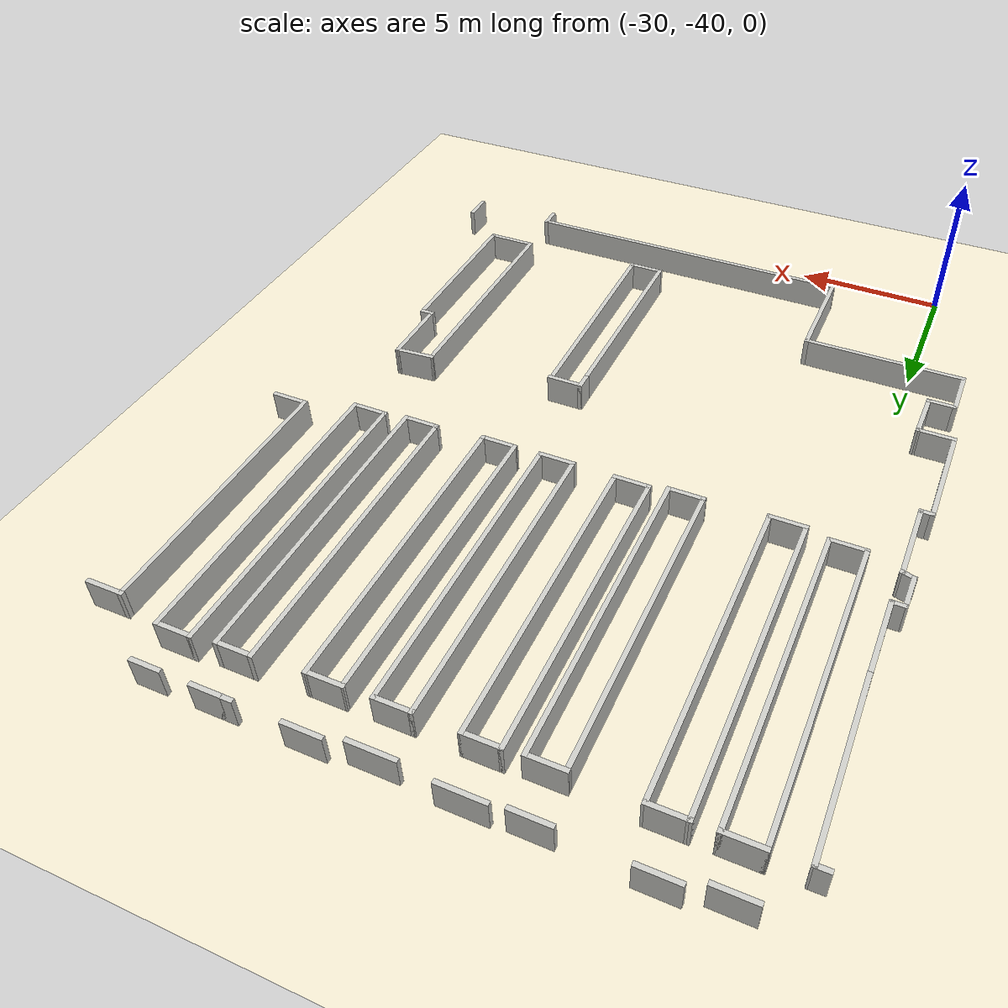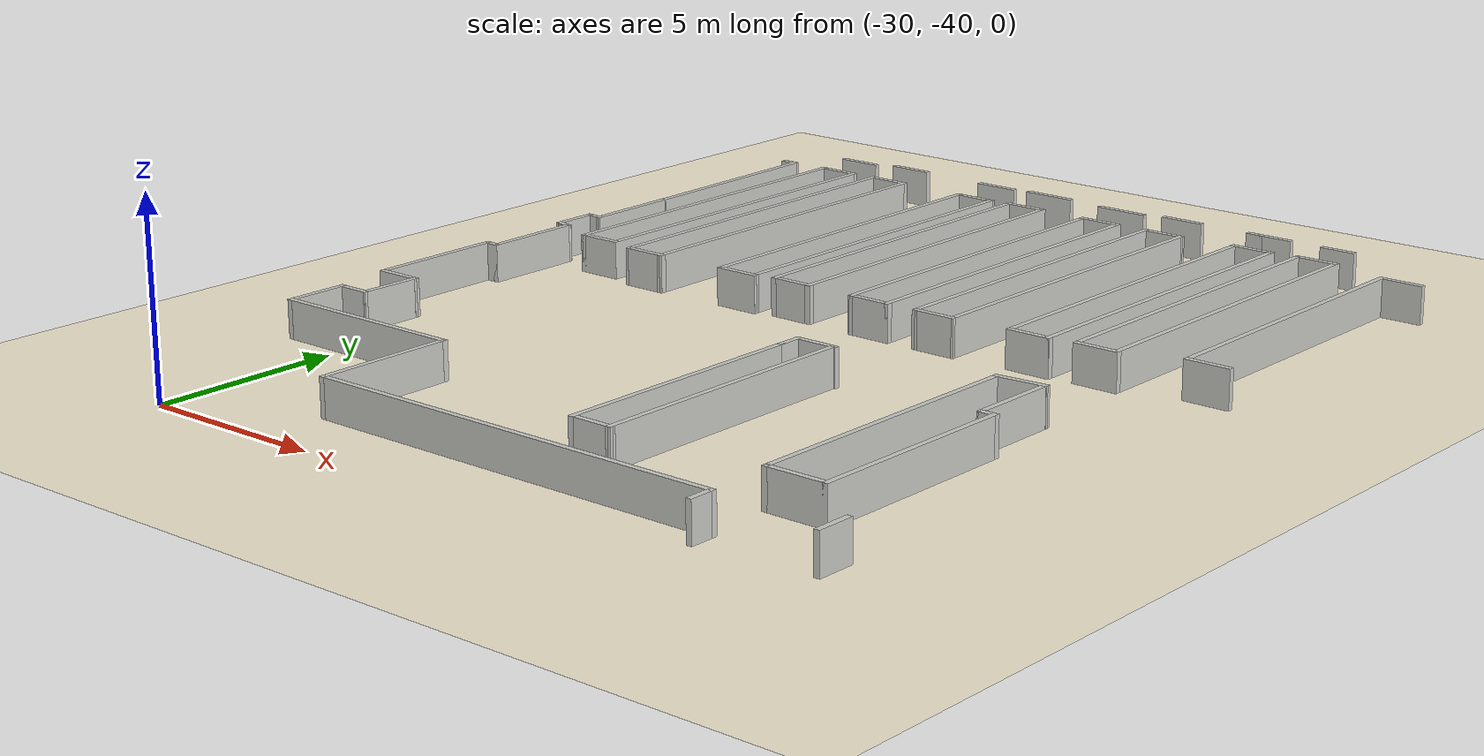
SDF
<sdf version="1.7">
 <world name="default">
  <model name="ground_plane">
   <static>1</static>
   <link name="link">
    <collision name="collision">
     <geometry><plane><normal>0 0 1</normal><size>100 100</size></plane></geometry>
     <surface><friction><ode><mu>100</mu><mu2>50</mu2></ode></friction></surface>
    </collision>
    <visual name="visual">
     <cast_shadows>0</cast_shadows>
     <geometry><plane><normal>0 0 1</normal><size>100 100</size></plane></geometry>
     <material>
      <ambient>0.85 0.82 0.72 1</ambient>
      <diffuse>0.95 0.92 0.82 1</diffuse>
      <specular>0.05 0.05 0.05 1</specular>
     </material>
    </visual>
   </link>
  </model>
  <model name="warehouse">
   <pose>0.004046 2.00696 0 0 -0 0</pose>
   <link name="Wall_100">
    <collision name="Wall_100_Collision">
     <geometry><box><size>1.75 0.15 1</size></box></geometry>
     <pose>0 0 0.5 0 -0 0</pose>
    </collision>
    <visual name="Wall_100_Visual">
     <pose>0 0 0.5 0 -0 0</pose>
     <geometry><box><size>1.75 0.15 1</size></box></geometry>
     <material>
      <script><uri>file://media/materials/scripts/gazebo.material</uri><name>Gazebo/CeilingTiled</name></script>
      <ambient>1 1 1 1</ambient>
     </material>
     <meta><layer>0</layer></meta>
    </visual>
    <pose>-30.8775 -34.2135 0 0 -0 1.54893</pose>
   </link>
   <link name="Wall_101">
    <collision name="Wall_101_Collision">
     <geometry><box><size>1.28487 0.15 1</size></box></geometry>
     <pose>0 0 0.5 0 -0 0</pose>
    </collision>
    <visual name="Wall_101_Visual">
     <pose>0 0 0.5 0 -0 0</pose>
     <geometry><box><size>1.28487 0.15 1</size></box></geometry>
     <material>
      <script><uri>file://media/materials/scripts/gazebo.material</uri><name>Gazebo/CeilingTiled</name></script>
      <ambient>1 1 1 1</ambient>
     </material>
     <meta><layer>0</layer></meta>
    </visual>
    <pose>-31.4275 -33.4135 0 0 -0 3.14159</pose>
   </link>
   <link name="Wall_102">
    <collision name="Wall_102_Collision">
     <geometry><box><size>3.75 0.15 1</size></box></geometry>
     <pose>0 0 0.5 0 -0 0</pose>
    </collision>
    <visual name="Wall_102_Visual">
     <pose>0 0 0.5 0 -0 0</pose>
     <geometry><box><size>3.75 0.15 1</size></box></geometry>
     <material>
      <script><uri>file://media/materials/scripts/gazebo.material</uri><name>Gazebo/CeilingTiled</name></script>
      <ambient>1 1 1 1</ambient>
     </material>
     <meta><layer>0</layer></meta>
    </visual>
    <pose>-31.995 -31.6135 0 0 -0 1.5708</pose>
   </link>
   <link name="Wall_103">
    <collision name="Wall_103_Collision">
     <geometry><box><size>0.5 0.15 1</size></box></geometry>
     <pose>0 0 0.5 0 -0 0</pose>
    </collision>
    <visual name="Wall_103_Visual">
     <pose>0 0 0.5 0 -0 0</pose>
     <geometry><box><size>0.5 0.15 1</size></box></geometry>
     <material>
      <script><uri>file://media/materials/scripts/gazebo.material</uri><name>Gazebo/CeilingTiled</name></script>
      <ambient>1 1 1 1</ambient>
     </material>
     <meta><layer>0</layer></meta>
    </visual>
    <pose>-31.82 -29.8135 0 0 -0 0</pose>
   </link>
   <link name="Wall_104">
    <collision name="Wall_104_Collision">
     <geometry><box><size>2.75 0.15 1</size></box></geometry>
     <pose>0 0 0.5 0 -0 0</pose>
    </collision>
    <visual name="Wall_104_Visual">
     <pose>0 0 0.5 0 -0 0</pose>
     <geometry><box><size>2.75 0.15 1</size></box></geometry>
     <material>
      <script><uri>file://media/materials/scripts/gazebo.material</uri><name>Gazebo/CeilingTiled</name></script>
      <ambient>1 1 1 1</ambient>
     </material>
     <meta><layer>0</layer></meta>
    </visual>
    <pose>-31.645 -28.5135 0 0 -0 1.5708</pose>
   </link>
   <link name="Wall_105">
    <collision name="Wall_105_Collision">
     <geometry><box><size>0.5 0.15 1</size></box></geometry>
     <pose>0 0 0.5 0 -0 0</pose>
    </collision>
    <visual name="Wall_105_Visual">
     <pose>0 0 0.5 0 -0 0</pose>
     <geometry><box><size>0.5 0.15 1</size></box></geometry>
     <material>
      <script><uri>file://media/materials/scripts/gazebo.material</uri><name>Gazebo/CeilingTiled</name></script>
      <ambient>1 1 1 1</ambient>
     </material>
     <meta><layer>0</layer></meta>
    </visual>
    <pose>-31.814 -27.168 0 0 -0 2.8786</pose>
   </link>
   <link name="Wall_106">
    <collision name="Wall_106_Collision">
     <geometry><box><size>1.25 0.15 1</size></box></geometry>
     <pose>0 0 0.5 0 -0 0</pose>
    </collision>
    <visual name="Wall_106_Visual">
     <pose>0 0 0.5 0 -0 0</pose>
     <geometry><box><size>1.25 0.15 1</size></box></geometry>
     <material>
      <script><uri>file://media/materials/scripts/gazebo.material</uri><name>Gazebo/CeilingTiled</name></script>
      <ambient>1 1 1 1</ambient>
     </material>
     <meta><layer>0</layer></meta>
    </visual>
    <pose>-31.976 -26.5725 0 0 -0 1.55807</pose>
   </link>
   <link name="Wall_107">
    <collision name="Wall_107_Collision">
     <geometry><box><size>0.532225 0.15 1</size></box></geometry>
     <pose>0 0 0.5 0 -0 0</pose>
    </collision>
    <visual name="Wall_107_Visual">
     <pose>0 0 0.5 0 -0 0</pose>
     <geometry><box><size>0.532225 0.15 1</size></box></geometry>
     <material>
      <script><uri>file://media/materials/scripts/gazebo.material</uri><name>Gazebo/CeilingTiled</name></script>
      <ambient>1 1 1 1</ambient>
     </material>
     <meta><layer>0</layer></meta>
    </visual>
    <pose>-31.7775 -26.0225 0 0 -0 0</pose>
   </link>
   <link name="Wall_108">
    <collision name="Wall_108_Collision">
     <geometry><box><size>2.75 0.15 1</size></box></geometry>
     <pose>0 0 0.5 0 -0 0</pose>
    </collision>
    <visual name="Wall_108_Visual">
     <pose>0 0 0.5 0 -0 0</pose>
     <geometry><box><size>2.75 0.15 1</size></box></geometry>
     <material>
      <script><uri>file://media/materials/scripts/gazebo.material</uri><name>Gazebo/CeilingTiled</name></script>
      <ambient>1 1 1 1</ambient>
     </material>
     <meta><layer>0</layer></meta>
    </visual>
    <pose>-31.5875 -24.7225 0 0 -0 1.57191</pose>
   </link>
   <link name="Wall_109">
    <collision name="Wall_109_Collision">
     <geometry><box><size>5.75 0.15 1</size></box></geometry>
     <pose>0 0 0.5 0 -0 0</pose>
    </collision>
    <visual name="Wall_109_Visual">
     <pose>0 0 0.5 0 -0 0</pose>
     <geometry><box><size>5.75 0.15 1</size></box></geometry>
     <material>
      <script><uri>file://media/materials/scripts/gazebo.material</uri><name>Gazebo/CeilingTiled</name></script>
      <ambient>1 1 1 1</ambient>
     </material>
     <meta><layer>0</layer></meta>
    </visual>
    <pose>-31.6073 -20.6225 0 0 -0 1.57998</pose>
   </link>
   <link name="Wall_110">
    <collision name="Wall_110_Collision">
     <geometry><box><size>0.5 0.15 1</size></box></geometry>
     <pose>0 0 0.5 0 -0 0</pose>
    </collision>
    <visual name="Wall_110_Visual">
     <pose>0 0 0.5 0 -0 0</pose>
     <geometry><box><size>0.5 0.15 1</size></box></geometry>
     <material>
      <script><uri>file://media/materials/scripts/gazebo.material</uri><name>Gazebo/CeilingTiled</name></script>
      <ambient>1 1 1 1</ambient>
     </material>
     <meta><layer>0</layer></meta>
    </visual>
    <pose>-31.808 -17.8225 0 0 -0 3.14159</pose>
   </link>
   <link name="Wall_414">
    <collision name="Wall_414_Collision">
     <geometry><box><size>8 0.15 1</size></box></geometry>
     <pose>0 0 0.5 0 -0 0</pose>
    </collision>
    <visual name="Wall_414_Visual">
     <pose>0 0 0.5 0 -0 0</pose>
     <geometry><box><size>8 0.15 1</size></box></geometry>
     <material>
      <script><uri>file://media/materials/scripts/gazebo.material</uri><name>Gazebo/CeilingTiled</name></script>
      <ambient>1 1 1 1</ambient>
     </material>
     <meta><layer>0</layer></meta>
    </visual>
    <pose>-14.907 -34.4825 0 0 -0 -1.5708</pose>
   </link>
   <link name="Wall_415">
    <collision name="Wall_415_Collision">
     <geometry><box><size>1.75 0.15 1</size></box></geometry>
     <pose>0 0 0.5 0 -0 0</pose>
    </collision>
    <visual name="Wall_415_Visual">
     <pose>0 0 0.5 0 -0 0</pose>
     <geometry><box><size>1.75 0.15 1</size></box></geometry>
     <material>
      <script><uri>file://media/materials/scripts/gazebo.material</uri><name>Gazebo/CeilingTiled</name></script>
      <ambient>1 1 1 1</ambient>
     </material>
     <meta><layer>0</layer></meta>
    </visual>
    <pose>-14.107 -38.4075 0 0 -0 0</pose>
   </link>
   <link name="Wall_416">
    <collision name="Wall_416_Collision">
     <geometry><box><size>5.75 0.15 1</size></box></geometry>
     <pose>0 0 0.5 0 -0 0</pose>
    </collision>
    <visual name="Wall_416_Visual">
     <pose>0 0 0.5 0 -0 0</pose>
     <geometry><box><size>5.75 0.15 1</size></box></geometry>
     <material>
      <script><uri>file://media/materials/scripts/gazebo.material</uri><name>Gazebo/CeilingTiled</name></script>
      <ambient>1 1 1 1</ambient>
     </material>
     <meta><layer>0</layer></meta>
    </visual>
    <pose>-13.307 -35.6075 0 0 -0 1.5708</pose>
   </link>
   <link name="Wall_417">
    <collision name="Wall_417_Collision">
     <geometry><box><size>0.5 0.15 1</size></box></geometry>
     <pose>0 0 0.5 0 -0 0</pose>
    </collision>
    <visual name="Wall_417_Visual">
     <pose>0 0 0.5 0 -0 0</pose>
     <geometry><box><size>0.5 0.15 1</size></box></geometry>
     <material>
      <script><uri>file://media/materials/scripts/gazebo.material</uri><name>Gazebo/CeilingTiled</name></script>
      <ambient>1 1 1 1</ambient>
     </material>
     <meta><layer>0</layer></meta>
    </visual>
    <pose>-13.482 -32.8075 0 0 -0 3.14159</pose>
   </link>
   <link name="Wall_420">
    <collision name="Wall_420_Collision">
     <geometry><box><size>2.5 0.15 1</size></box></geometry>
     <pose>0 0 0.5 0 -0 0</pose>
    </collision>
    <visual name="Wall_420_Visual">
     <pose>0 0 0.5 0 -0 0</pose>
     <geometry><box><size>2.5 0.15 1</size></box></geometry>
     <material>
      <script><uri>file://media/materials/scripts/gazebo.material</uri><name>Gazebo/CeilingTiled</name></script>
      <ambient>1 1 1 1</ambient>
     </material>
     <meta><layer>0</layer></meta>
    </visual>
    <pose>-13.657 -31.6325 0 0 -0 1.5708</pose>
   </link>
   <link name="Wall_421">
    <collision name="Wall_421_Collision">
     <geometry><box><size>1.40399 0.15 1</size></box></geometry>
     <pose>0 0 0.5 0 -0 0</pose>
    </collision>
    <visual name="Wall_421_Visual">
     <pose>0 0 0.5 0 -0 0</pose>
     <geometry><box><size>1.40399 0.15 1</size></box></geometry>
     <material>
      <script><uri>file://media/materials/scripts/gazebo.material</uri><name>Gazebo/CeilingTiled</name></script>
      <ambient>1 1 1 1</ambient>
     </material>
     <meta><layer>0</layer></meta>
    </visual>
    <pose>-14.282 -30.5075 0 0 -0 -3.06176</pose>
   </link>
   <link name="Wall_430">
    <collision name="Wall_430_Collision">
     <geometry><box><size>7.50833 0.15 1</size></box></geometry>
     <pose>0 0 0.5 0 -0 0</pose>
    </collision>
    <visual name="Wall_430_Visual">
     <pose>0 0 0.5 0 -0 0</pose>
     <geometry><box><size>7.50833 0.15 1</size></box></geometry>
     <material>
      <script><uri>file://media/materials/scripts/gazebo.material</uri><name>Gazebo/CeilingTiled</name></script>
      <ambient>1 1 1 1</ambient>
     </material>
     <meta><layer>0</layer></meta>
    </visual>
    <pose>-19.1042 -34.9634 0 0 -0 -1.56422</pose>
   </link>
   <link name="Wall_431">
    <collision name="Wall_431_Collision">
     <geometry><box><size>1.25 0.15 1</size></box></geometry>
     <pose>0 0 0.5 0 -0 0</pose>
    </collision>
    <visual name="Wall_431_Visual">
     <pose>0 0 0.5 0 -0 0</pose>
     <geometry><box><size>1.25 0.15 1</size></box></geometry>
     <material>
      <script><uri>file://media/materials/scripts/gazebo.material</uri><name>Gazebo/CeilingTiled</name></script>
      <ambient>1 1 1 1</ambient>
     </material>
     <meta><layer>0</layer></meta>
    </visual>
    <pose>-19.63 -38.6425 0 0 -0 3.14159</pose>
   </link>
   <link name="Wall_432">
    <collision name="Wall_432_Collision">
     <geometry><box><size>7 0.15 1</size></box></geometry>
     <pose>0 0 0.5 0 -0 0</pose>
    </collision>
    <visual name="Wall_432_Visual">
     <pose>0 0 0.5 0 -0 0</pose>
     <geometry><box><size>7 0.15 1</size></box></geometry>
     <material>
      <script><uri>file://media/materials/scripts/gazebo.material</uri><name>Gazebo/CeilingTiled</name></script>
      <ambient>1 1 1 1</ambient>
     </material>
     <meta><layer>0</layer></meta>
    </visual>
    <pose>-20.18 -35.2175 0 0 -0 1.5708</pose>
   </link>
   <link name="Wall_548">
    <collision name="Wall_548_Collision">
     <geometry><box><size>1.25 0.15 1</size></box></geometry>
     <pose>0 0 0.5 0 -0 0</pose>
    </collision>
    <visual name="Wall_548_Visual">
     <pose>0 0 0.5 0 -0 0</pose>
     <geometry><box><size>1.25 0.15 1</size></box></geometry>
     <material>
      <script><uri>file://media/materials/scripts/gazebo.material</uri><name>Gazebo/CeilingTiled</name></script>
      <ambient>1 1 1 1</ambient>
     </material>
     <meta><layer>0</layer></meta>
    </visual>
    <pose>-28.206 -17.7485 0 0 -0 0</pose>
   </link>
   <link name="Wall_549">
    <collision name="Wall_549_Collision">
     <geometry><box><size>10.2326 0.15 1</size></box></geometry>
     <pose>0 0 0.5 0 -0 0</pose>
    </collision>
    <visual name="Wall_549_Visual">
     <pose>0 0 0.5 0 -0 0</pose>
     <geometry><box><size>10.2326 0.15 1</size></box></geometry>
     <material>
      <script><uri>file://media/materials/scripts/gazebo.material</uri><name>Gazebo/CeilingTiled</name></script>
      <ambient>1 1 1 1</ambient>
     </material>
     <meta><layer>0</layer></meta>
    </visual>
    <pose>-27.6519 -22.7898 0 0 -0 -1.56997</pose>
   </link>
   <link name="Wall_555">
    <collision name="Wall_555_Collision">
     <geometry><box><size>1.25 0.15 1</size></box></geometry>
     <pose>0 0 0.5 0 -0 0</pose>
    </collision>
    <visual name="Wall_555_Visual">
     <pose>0 0 0.5 0 -0 0</pose>
     <geometry><box><size>1.25 0.15 1</size></box></geometry>
     <material>
      <script><uri>file://media/materials/scripts/gazebo.material</uri><name>Gazebo/CeilingTiled</name></script>
      <ambient>1 1 1 1</ambient>
     </material>
     <meta><layer>0</layer></meta>
    </visual>
    <pose>-28.1894 -27.8311 0 0 -0 3.14159</pose>
   </link>
   <link name="Wall_556">
    <collision name="Wall_556_Collision">
     <geometry><box><size>10.2326 0.15 1</size></box></geometry>
     <pose>0 0 0.5 0 -0 0</pose>
    </collision>
    <visual name="Wall_556_Visual">
     <pose>0 0 0.5 0 -0 0</pose>
     <geometry><box><size>10.2326 0.15 1</size></box></geometry>
     <material>
      <script><uri>file://media/materials/scripts/gazebo.material</uri><name>Gazebo/CeilingTiled</name></script>
      <ambient>1 1 1 1</ambient>
     </material>
     <meta><layer>0</layer></meta>
    </visual>
    <pose>-28.7519 -22.7898 0 0 -0 1.57162</pose>
   </link>
   <link name="Wall_558">
    <collision name="Wall_558_Collision">
     <geometry><box><size>1.25 0.15 1</size></box></geometry>
     <pose>0 0 0.5 0 -0 0</pose>
    </collision>
    <visual name="Wall_558_Visual">
     <pose>0 0 0.5 0 -0 0</pose>
     <geometry><box><size>1.25 0.15 1</size></box></geometry>
     <material>
      <script><uri>file://media/materials/scripts/gazebo.material</uri><name>Gazebo/CeilingTiled</name></script>
      <ambient>1 1 1 1</ambient>
     </material>
     <meta><layer>0</layer></meta>
    </visual>
    <pose>-30.022 -17.7685 0 0 -0 3.14159</pose>
   </link>
   <link name="Wall_559">
    <collision name="Wall_559_Collision">
     <geometry><box><size>10 0.15 1</size></box></geometry>
     <pose>0 0 0.5 0 -0 0</pose>
    </collision>
    <visual name="Wall_559_Visual">
     <pose>0 0 0.5 0 -0 0</pose>
     <geometry><box><size>10 0.15 1</size></box></geometry>
     <material>
      <script><uri>file://media/materials/scripts/gazebo.material</uri><name>Gazebo/CeilingTiled</name></script>
      <ambient>1 1 1 1</ambient>
     </material>
     <meta><layer>0</layer></meta>
    </visual>
    <pose>-30.572 -22.6935 0 0 -0 -1.5708</pose>
   </link>
   <link name="Wall_560">
    <collision name="Wall_560_Collision">
     <geometry><box><size>1.25 0.15 1</size></box></geometry>
     <pose>0 0 0.5 0 -0 0</pose>
    </collision>
    <visual name="Wall_560_Visual">
     <pose>0 0 0.5 0 -0 0</pose>
     <geometry><box><size>1.25 0.15 1</size></box></geometry>
     <material>
      <script><uri>file://media/materials/scripts/gazebo.material</uri><name>Gazebo/CeilingTiled</name></script>
      <ambient>1 1 1 1</ambient>
     </material>
     <meta><layer>0</layer></meta>
    </visual>
    <pose>-30.022 -27.6185 0 0 -0 0</pose>
   </link>
   <link name="Wall_561">
    <collision name="Wall_561_Collision">
     <geometry><box><size>10 0.15 1</size></box></geometry>
     <pose>0 0 0.5 0 -0 0</pose>
    </collision>
    <visual name="Wall_561_Visual">
     <pose>0 0 0.5 0 -0 0</pose>
     <geometry><box><size>10 0.15 1</size></box></geometry>
     <material>
      <script><uri>file://media/materials/scripts/gazebo.material</uri><name>Gazebo/CeilingTiled</name></script>
      <ambient>1 1 1 1</ambient>
     </material>
     <meta><layer>0</layer></meta>
    </visual>
    <pose>-29.472 -22.6935 0 0 -0 1.5708</pose>
   </link>
   <link name="Wall_563">
    <collision name="Wall_563_Collision">
     <geometry><box><size>1.25 0.15 1</size></box></geometry>
     <pose>0 0 0.5 0 -0 0</pose>
    </collision>
    <visual name="Wall_563_Visual">
     <pose>0 0 0.5 0 -0 0</pose>
     <geometry><box><size>1.25 0.15 1</size></box></geometry>
     <material>
      <script><uri>file://media/materials/scripts/gazebo.material</uri><name>Gazebo/CeilingTiled</name></script>
      <ambient>1 1 1 1</ambient>
     </material>
     <meta><layer>0</layer></meta>
    </visual>
    <pose>-25.114 -17.7905 0 0 -0 0</pose>
   </link>
   <link name="Wall_564">
    <collision name="Wall_564_Collision">
     <geometry><box><size>10.0957 0.15 1</size></box></geometry>
     <pose>0 0 0.5 0 -0 0</pose>
    </collision>
    <visual name="Wall_564_Visual">
     <pose>0 0 0.5 0 -0 0</pose>
     <geometry><box><size>10.0957 0.15 1</size></box></geometry>
     <material>
      <script><uri>file://media/materials/scripts/gazebo.material</uri><name>Gazebo/CeilingTiled</name></script>
      <ambient>1 1 1 1</ambient>
     </material>
     <meta><layer>0</layer></meta>
    </visual>
    <pose>-24.5575 -22.7635 0 0 -0 -1.56949</pose>
   </link>
   <link name="Wall_566">
    <collision name="Wall_566_Collision">
     <geometry><box><size>10.0957 0.15 1</size></box></geometry>
     <pose>0 0 0.5 0 -0 0</pose>
    </collision>
    <visual name="Wall_566_Visual">
     <pose>0 0 0.5 0 -0 0</pose>
     <geometry><box><size>10.0957 0.15 1</size></box></geometry>
     <material>
      <script><uri>file://media/materials/scripts/gazebo.material</uri><name>Gazebo/CeilingTiled</name></script>
      <ambient>1 1 1 1</ambient>
     </material>
     <meta><layer>0</layer></meta>
    </visual>
    <pose>-25.6575 -22.7635 0 0 -0 1.5721</pose>
   </link>
   <link name="Wall_568">
    <collision name="Wall_568_Collision">
     <geometry><box><size>1.25 0.15 1</size></box></geometry>
     <pose>0 0 0.5 0 -0 0</pose>
    </collision>
    <visual name="Wall_568_Visual">
     <pose>0 0 0.5 0 -0 0</pose>
     <geometry><box><size>1.25 0.15 1</size></box></geometry>
     <material>
      <script><uri>file://media/materials/scripts/gazebo.material</uri><name>Gazebo/CeilingTiled</name></script>
      <ambient>1 1 1 1</ambient>
     </material>
     <meta><layer>0</layer></meta>
    </visual>
    <pose>-23.436 -17.7225 0 0 -0 0</pose>
   </link>
   <link name="Wall_569">
    <collision name="Wall_569_Collision">
     <geometry><box><size>10 0.15 1</size></box></geometry>
     <pose>0 0 0.5 0 -0 0</pose>
    </collision>
    <visual name="Wall_569_Visual">
     <pose>0 0 0.5 0 -0 0</pose>
     <geometry><box><size>10 0.15 1</size></box></geometry>
     <material>
      <script><uri>file://media/materials/scripts/gazebo.material</uri><name>Gazebo/CeilingTiled</name></script>
      <ambient>1 1 1 1</ambient>
     </material>
     <meta><layer>0</layer></meta>
    </visual>
    <pose>-22.886 -22.6475 0 0 -0 -1.5708</pose>
   </link>
   <link name="Wall_570">
    <collision name="Wall_570_Collision">
     <geometry><box><size>1.25 0.15 1</size></box></geometry>
     <pose>0 0 0.5 0 -0 0</pose>
    </collision>
    <visual name="Wall_570_Visual">
     <pose>0 0 0.5 0 -0 0</pose>
     <geometry><box><size>1.25 0.15 1</size></box></geometry>
     <material>
      <script><uri>file://media/materials/scripts/gazebo.material</uri><name>Gazebo/CeilingTiled</name></script>
      <ambient>1 1 1 1</ambient>
     </material>
     <meta><layer>0</layer></meta>
    </visual>
    <pose>-23.436 -27.5725 0 0 -0 3.14159</pose>
   </link>
   <link name="Wall_571">
    <collision name="Wall_571_Collision">
     <geometry><box><size>10 0.15 1</size></box></geometry>
     <pose>0 0 0.5 0 -0 0</pose>
    </collision>
    <visual name="Wall_571_Visual">
     <pose>0 0 0.5 0 -0 0</pose>
     <geometry><box><size>10 0.15 1</size></box></geometry>
     <material>
      <script><uri>file://media/materials/scripts/gazebo.material</uri><name>Gazebo/CeilingTiled</name></script>
      <ambient>1 1 1 1</ambient>
     </material>
     <meta><layer>0</layer></meta>
    </visual>
    <pose>-23.986 -22.6475 0 0 -0 1.5708</pose>
   </link>
   <link name="Wall_573">
    <collision name="Wall_573_Collision">
     <geometry><box><size>1.25 0.15 1</size></box></geometry>
     <pose>0 0 0.5 0 -0 0</pose>
    </collision>
    <visual name="Wall_573_Visual">
     <pose>0 0 0.5 0 -0 0</pose>
     <geometry><box><size>1.25 0.15 1</size></box></geometry>
     <material>
      <script><uri>file://media/materials/scripts/gazebo.material</uri><name>Gazebo/CeilingTiled</name></script>
      <ambient>1 1 1 1</ambient>
     </material>
     <meta><layer>0</layer></meta>
    </visual>
    <pose>-20.943 -17.7455 0 0 -0 0</pose>
   </link>
   <link name="Wall_574">
    <collision name="Wall_574_Collision">
     <geometry><box><size>10 0.15 1</size></box></geometry>
     <pose>0 0 0.5 0 -0 0</pose>
    </collision>
    <visual name="Wall_574_Visual">
     <pose>0 0 0.5 0 -0 0</pose>
     <geometry><box><size>10 0.15 1</size></box></geometry>
     <material>
      <script><uri>file://media/materials/scripts/gazebo.material</uri><name>Gazebo/CeilingTiled</name></script>
      <ambient>1 1 1 1</ambient>
     </material>
     <meta><layer>0</layer></meta>
    </visual>
    <pose>-20.393 -22.6705 0 0 -0 -1.5708</pose>
   </link>
   <link name="Wall_575">
    <collision name="Wall_575_Collision">
     <geometry><box><size>1.25 0.15 1</size></box></geometry>
     <pose>0 0 0.5 0 -0 0</pose>
    </collision>
    <visual name="Wall_575_Visual">
     <pose>0 0 0.5 0 -0 0</pose>
     <geometry><box><size>1.25 0.15 1</size></box></geometry>
     <material>
      <script><uri>file://media/materials/scripts/gazebo.material</uri><name>Gazebo/CeilingTiled</name></script>
      <ambient>1 1 1 1</ambient>
     </material>
     <meta><layer>0</layer></meta>
    </visual>
    <pose>-20.943 -27.5955 0 0 -0 3.14159</pose>
   </link>
   <link name="Wall_576">
    <collision name="Wall_576_Collision">
     <geometry><box><size>10 0.15 1</size></box></geometry>
     <pose>0 0 0.5 0 -0 0</pose>
    </collision>
    <visual name="Wall_576_Visual">
     <pose>0 0 0.5 0 -0 0</pose>
     <geometry><box><size>10 0.15 1</size></box></geometry>
     <material>
      <script><uri>file://media/materials/scripts/gazebo.material</uri><name>Gazebo/CeilingTiled</name></script>
      <ambient>1 1 1 1</ambient>
     </material>
     <meta><layer>0</layer></meta>
    </visual>
    <pose>-21.493 -22.6705 0 0 -0 1.5708</pose>
   </link>
   <link name="Wall_578">
    <collision name="Wall_578_Collision">
     <geometry><box><size>1.25 0.15 1</size></box></geometry>
     <pose>0 0 0.5 0 -0 0</pose>
    </collision>
    <visual name="Wall_578_Visual">
     <pose>0 0 0.5 0 -0 0</pose>
     <geometry><box><size>1.25 0.15 1</size></box></geometry>
     <material>
      <script><uri>file://media/materials/scripts/gazebo.material</uri><name>Gazebo/CeilingTiled</name></script>
      <ambient>1 1 1 1</ambient>
     </material>
     <meta><layer>0</layer></meta>
    </visual>
    <pose>-18.948 -17.7225 0 0 -0 0</pose>
   </link>
   <link name="Wall_579">
    <collision name="Wall_579_Collision">
     <geometry><box><size>10 0.15 1</size></box></geometry>
     <pose>0 0 0.5 0 -0 0</pose>
    </collision>
    <visual name="Wall_579_Visual">
     <pose>0 0 0.5 0 -0 0</pose>
     <geometry><box><size>10 0.15 1</size></box></geometry>
     <material>
      <script><uri>file://media/materials/scripts/gazebo.material</uri><name>Gazebo/CeilingTiled</name></script>
      <ambient>1 1 1 1</ambient>
     </material>
     <meta><layer>0</layer></meta>
    </visual>
    <pose>-18.409 -22.6475 0 0 -0 -1.57303</pose>
   </link>
   <link name="Wall_582">
    <collision name="Wall_582_Collision">
     <geometry><box><size>1.25 0.15 1</size></box></geometry>
     <pose>0 0 0.5 0 -0 0</pose>
    </collision>
    <visual name="Wall_582_Visual">
     <pose>0 0 0.5 0 -0 0</pose>
     <geometry><box><size>1.25 0.15 1</size></box></geometry>
     <material>
      <script><uri>file://media/materials/scripts/gazebo.material</uri><name>Gazebo/CeilingTiled</name></script>
      <ambient>1 1 1 1</ambient>
     </material>
     <meta><layer>0</layer></meta>
    </visual>
    <pose>-18.97 -27.5725 0 0 -0 3.14159</pose>
   </link>
   <link name="Wall_583">
    <collision name="Wall_583_Collision">
     <geometry><box><size>10 0.15 1</size></box></geometry>
     <pose>0 0 0.5 0 -0 0</pose>
    </collision>
    <visual name="Wall_583_Visual">
     <pose>0 0 0.5 0 -0 0</pose>
     <geometry><box><size>10 0.15 1</size></box></geometry>
     <material>
      <script><uri>file://media/materials/scripts/gazebo.material</uri><name>Gazebo/CeilingTiled</name></script>
      <ambient>1 1 1 1</ambient>
     </material>
     <meta><layer>0</layer></meta>
    </visual>
    <pose>-19.509 -22.6475 0 0 -0 1.56856</pose>
   </link>
   <link name="Wall_585">
    <collision name="Wall_585_Collision">
     <geometry><box><size>1.25 0.15 1</size></box></geometry>
     <pose>0 0 0.5 0 -0 0</pose>
    </collision>
    <visual name="Wall_585_Visual">
     <pose>0 0 0.5 0 -0 0</pose>
     <geometry><box><size>1.25 0.15 1</size></box></geometry>
     <material>
      <script><uri>file://media/materials/scripts/gazebo.material</uri><name>Gazebo/CeilingTiled</name></script>
      <ambient>1 1 1 1</ambient>
     </material>
     <meta><layer>0</layer></meta>
    </visual>
    <pose>-16.273 -17.5865 0 0 -0 0</pose>
   </link>
   <link name="Wall_588">
    <collision name="Wall_588_Collision">
     <geometry><box><size>10 0.15 1</size></box></geometry>
     <pose>0 0 0.5 0 -0 0</pose>
    </collision>
    <visual name="Wall_588_Visual">
     <pose>0 0 0.5 0 -0 0</pose>
     <geometry><box><size>10 0.15 1</size></box></geometry>
     <material>
      <script><uri>file://media/materials/scripts/gazebo.material</uri><name>Gazebo/CeilingTiled</name></script>
      <ambient>1 1 1 1</ambient>
     </material>
     <meta><layer>0</layer></meta>
    </visual>
    <pose>-15.723 -22.5115 0 0 -0 -1.5708</pose>
   </link>
   <link name="Wall_589">
    <collision name="Wall_589_Collision">
     <geometry><box><size>1.25 0.15 1</size></box></geometry>
     <pose>0 0 0.5 0 -0 0</pose>
    </collision>
    <visual name="Wall_589_Visual">
     <pose>0 0 0.5 0 -0 0</pose>
     <geometry><box><size>1.25 0.15 1</size></box></geometry>
     <material>
      <script><uri>file://media/materials/scripts/gazebo.material</uri><name>Gazebo/CeilingTiled</name></script>
      <ambient>1 1 1 1</ambient>
     </material>
     <meta><layer>0</layer></meta>
    </visual>
    <pose>-16.273 -27.4365 0 0 -0 3.14159</pose>
   </link>
   <link name="Wall_590">
    <collision name="Wall_590_Collision">
     <geometry><box><size>10 0.15 1</size></box></geometry>
     <pose>0 0 0.5 0 -0 0</pose>
    </collision>
    <visual name="Wall_590_Visual">
     <pose>0 0 0.5 0 -0 0</pose>
     <geometry><box><size>10 0.15 1</size></box></geometry>
     <material>
      <script><uri>file://media/materials/scripts/gazebo.material</uri><name>Gazebo/CeilingTiled</name></script>
      <ambient>1 1 1 1</ambient>
     </material>
     <meta><layer>0</layer></meta>
    </visual>
    <pose>-16.823 -22.5115 0 0 -0 1.5708</pose>
   </link>
   <link name="Wall_594">
    <collision name="Wall_594_Collision">
     <geometry><box><size>1.25 0.15 1</size></box></geometry>
     <pose>0 0 0.5 0 -0 0</pose>
    </collision>
    <visual name="Wall_594_Visual">
     <pose>0 0 0.5 0 -0 0</pose>
     <geometry><box><size>1.25 0.15 1</size></box></geometry>
     <material>
      <script><uri>file://media/materials/scripts/gazebo.material</uri><name>Gazebo/CeilingTiled</name></script>
      <ambient>1 1 1 1</ambient>
     </material>
     <meta><layer>0</layer></meta>
    </visual>
    <pose>-14.437 -17.4735 0 0 -0 0</pose>
   </link>
   <link name="Wall_595">
    <collision name="Wall_595_Collision">
     <geometry><box><size>10 0.15 1</size></box></geometry>
     <pose>0 0 0.5 0 -0 0</pose>
    </collision>
    <visual name="Wall_595_Visual">
     <pose>0 0 0.5 0 -0 0</pose>
     <geometry><box><size>10 0.15 1</size></box></geometry>
     <material>
      <script><uri>file://media/materials/scripts/gazebo.material</uri><name>Gazebo/CeilingTiled</name></script>
      <ambient>1 1 1 1</ambient>
     </material>
     <meta><layer>0</layer></meta>
    </visual>
    <pose>-13.887 -22.3985 0 0 -0 -1.5708</pose>
   </link>
   <link name="Wall_596">
    <collision name="Wall_596_Collision">
     <geometry><box><size>1.25 0.15 1</size></box></geometry>
     <pose>0 0 0.5 0 -0 0</pose>
    </collision>
    <visual name="Wall_596_Visual">
     <pose>0 0 0.5 0 -0 0</pose>
     <geometry><box><size>1.25 0.15 1</size></box></geometry>
     <material>
      <script><uri>file://media/materials/scripts/gazebo.material</uri><name>Gazebo/CeilingTiled</name></script>
      <ambient>1 1 1 1</ambient>
     </material>
     <meta><layer>0</layer></meta>
    </visual>
    <pose>-14.437 -27.3235 0 0 -0 3.14159</pose>
   </link>
   <link name="Wall_597">
    <collision name="Wall_597_Collision">
     <geometry><box><size>10 0.15 1</size></box></geometry>
     <pose>0 0 0.5 0 -0 0</pose>
    </collision>
    <visual name="Wall_597_Visual">
     <pose>0 0 0.5 0 -0 0</pose>
     <geometry><box><size>10 0.15 1</size></box></geometry>
     <material>
      <script><uri>file://media/materials/scripts/gazebo.material</uri><name>Gazebo/CeilingTiled</name></script>
      <ambient>1 1 1 1</ambient>
     </material>
     <meta><layer>0</layer></meta>
    </visual>
    <pose>-14.987 -22.3985 0 0 -0 1.5708</pose>
   </link>
   <link name="Wall_603">
    <collision name="Wall_603_Collision">
     <geometry><box><size>1.25 0.15 1</size></box></geometry>
     <pose>0 0 0.5 0 -0 0</pose>
    </collision>
    <visual name="Wall_603_Visual">
     <pose>0 0 0.5 0 -0 0</pose>
     <geometry><box><size>1.25 0.15 1</size></box></geometry>
     <material>
      <script><uri>file://media/materials/scripts/gazebo.material</uri><name>Gazebo/CeilingTiled</name></script>
      <ambient>1 1 1 1</ambient>
     </material>
     <meta><layer>0</layer></meta>
    </visual>
    <pose>-11.774 -17.9105 0 0 -0 0</pose>
   </link>
   <link name="Wall_607">
    <collision name="Wall_607_Collision">
     <geometry><box><size>9 0.15 1</size></box></geometry>
     <pose>0 0 0.5 0 -0 0</pose>
    </collision>
    <visual name="Wall_607_Visual">
     <pose>0 0 0.5 0 -0 0</pose>
     <geometry><box><size>9 0.15 1</size></box></geometry>
     <material>
      <script><uri>file://media/materials/scripts/gazebo.material</uri><name>Gazebo/CeilingTiled</name></script>
      <ambient>1 1 1 1</ambient>
     </material>
     <meta><layer>0</layer></meta>
    </visual>
    <pose>-12.324 -22.3355 0 0 -0 -1.5708</pose>
   </link>
   <link name="Wall_608">
    <collision name="Wall_608_Collision">
     <geometry><box><size>1.25 0.15 1</size></box></geometry>
     <pose>0 0 0.5 0 -0 0</pose>
    </collision>
    <visual name="Wall_608_Visual">
     <pose>0 0 0.5 0 -0 0</pose>
     <geometry><box><size>1.25 0.15 1</size></box></geometry>
     <material>
      <script><uri>file://media/materials/scripts/gazebo.material</uri><name>Gazebo/CeilingTiled</name></script>
      <ambient>1 1 1 1</ambient>
     </material>
     <meta><layer>0</layer></meta>
    </visual>
    <pose>-11.774 -26.7605 0 0 -0 0</pose>
   </link>
   <link name="Wall_731">
    <collision name="Wall_731_Collision">
     <geometry><box><size>1 0.15 1</size></box></geometry>
     <pose>0 0 0.5 0 -0 0</pose>
    </collision>
    <visual name="Wall_731_Visual">
     <pose>0 0 0.5 0 -0 0</pose>
     <geometry><box><size>1 0.15 1</size></box></geometry>
     <material>
      <script><uri>file://media/materials/scripts/gazebo.material</uri><name>Gazebo/CeilingTiled</name></script>
      <ambient>1 1 1 1</ambient>
     </material>
     <meta><layer>0</layer></meta>
    </visual>
    <pose>-16.408 -16.2335 0 0 -0 3.14159</pose>
   </link>
   <link name="Wall_734">
    <collision name="Wall_734_Collision">
     <geometry><box><size>0.5 0.15 1</size></box></geometry>
     <pose>0 0 0.5 0 -0 0</pose>
    </collision>
    <visual name="Wall_734_Visual">
     <pose>0 0 0.5 0 -0 0</pose>
     <geometry><box><size>0.5 0.15 1</size></box></geometry>
     <material>
      <script><uri>file://media/materials/scripts/gazebo.material</uri><name>Gazebo/CeilingTiled</name></script>
      <ambient>1 1 1 1</ambient>
     </material>
     <meta><layer>0</layer></meta>
    </visual>
    <pose>-17.008 -16.2335 0 0 -0 3.14159</pose>
   </link>
   <link name="Wall_738">
    <collision name="Wall_738_Collision">
     <geometry><box><size>1 0.15 1</size></box></geometry>
     <pose>0 0 0.5 0 -0 0</pose>
    </collision>
    <visual name="Wall_738_Visual">
     <pose>0 0 0.5 0 -0 0</pose>
     <geometry><box><size>1 0.15 1</size></box></geometry>
     <material>
      <script><uri>file://media/materials/scripts/gazebo.material</uri><name>Gazebo/CeilingTiled</name></script>
      <ambient>1 1 1 1</ambient>
     </material>
     <meta><layer>0</layer></meta>
    </visual>
    <pose>-14.513 -16.2465 0 0 -0 3.14159</pose>
   </link>
   <link name="Wall_747">
    <collision name="Wall_747_Collision">
     <geometry><box><size>1.25 0.15 1</size></box></geometry>
     <pose>0 0 0.5 0 -0 0</pose>
    </collision>
    <visual name="Wall_747_Visual">
     <pose>0 0 0.5 0 -0 0</pose>
     <geometry><box><size>1.25 0.15 1</size></box></geometry>
     <material>
      <script><uri>file://media/materials/scripts/gazebo.material</uri><name>Gazebo/CeilingTiled</name></script>
      <ambient>1 1 1 1</ambient>
     </material>
     <meta><layer>0</layer></meta>
    </visual>
    <pose>-19.293 -16.2205 0 0 -0 3.14159</pose>
   </link>
   <link name="Wall_752">
    <collision name="Wall_752_Collision">
     <geometry><box><size>1.5 0.15 1</size></box></geometry>
     <pose>0 0 0.5 0 -0 0</pose>
    </collision>
    <visual name="Wall_752_Visual">
     <pose>0 0 0.5 0 -0 0</pose>
     <geometry><box><size>1.5 0.15 1</size></box></geometry>
     <material>
      <script><uri>file://media/materials/scripts/gazebo.material</uri><name>Gazebo/CeilingTiled</name></script>
      <ambient>1 1 1 1</ambient>
     </material>
     <meta><layer>0</layer></meta>
    </visual>
    <pose>-21.138 -16.4095 0 0 -0 3.14159</pose>
   </link>
   <link name="Wall_766">
    <collision name="Wall_766_Collision">
     <geometry><box><size>1.5 0.15 1</size></box></geometry>
     <pose>0 0 0.5 0 -0 0</pose>
    </collision>
    <visual name="Wall_766_Visual">
     <pose>0 0 0.5 0 -0 0</pose>
     <geometry><box><size>1.5 0.15 1</size></box></geometry>
     <material>
      <script><uri>file://media/materials/scripts/gazebo.material</uri><name>Gazebo/CeilingTiled</name></script>
      <ambient>1 1 1 1</ambient>
     </material>
     <meta><layer>0</layer></meta>
    </visual>
    <pose>-23.643 -16.2735 0 0 -0 3.14159</pose>
   </link>
   <link name="Wall_771">
    <collision name="Wall_771_Collision">
     <geometry><box><size>1.25 0.15 1</size></box></geometry>
     <pose>0 0 0.5 0 -0 0</pose>
    </collision>
    <visual name="Wall_771_Visual">
     <pose>0 0 0.5 0 -0 0</pose>
     <geometry><box><size>1.25 0.15 1</size></box></geometry>
     <material>
      <script><uri>file://media/materials/scripts/gazebo.material</uri><name>Gazebo/CeilingTiled</name></script>
      <ambient>1 1 1 1</ambient>
     </material>
     <meta><layer>0</layer></meta>
    </visual>
    <pose>-25.392 -16.3565 0 0 -0 3.14159</pose>
   </link>
   <link name="Wall_775">
    <collision name="Wall_775_Collision">
     <geometry><box><size>1.25 0.15 1</size></box></geometry>
     <pose>0 0 0.5 0 -0 0</pose>
    </collision>
    <visual name="Wall_775_Visual">
     <pose>0 0 0.5 0 -0 0</pose>
     <geometry><box><size>1.25 0.15 1</size></box></geometry>
     <material>
      <script><uri>file://media/materials/scripts/gazebo.material</uri><name>Gazebo/CeilingTiled</name></script>
      <ambient>1 1 1 1</ambient>
     </material>
     <meta><layer>0</layer></meta>
    </visual>
    <pose>-30.235 -16.5015 0 0 -0 0</pose>
   </link>
   <link name="Wall_781">
    <collision name="Wall_781_Collision">
     <geometry><box><size>1.25 0.15 1</size></box></geometry>
     <pose>0 0 0.5 0 -0 0</pose>
    </collision>
    <visual name="Wall_781_Visual">
     <pose>0 0 0.5 0 -0 0</pose>
     <geometry><box><size>1.25 0.15 1</size></box></geometry>
     <material>
      <script><uri>file://media/materials/scripts/gazebo.material</uri><name>Gazebo/CeilingTiled</name></script>
      <ambient>1 1 1 1</ambient>
     </material>
     <meta><layer>0</layer></meta>
    </visual>
    <pose>-28.554 -16.2485 0 0 -0 3.14159</pose>
   </link>
   <link name="Wall_92">
    <collision name="Wall_92_Collision">
     <geometry><box><size>1 0.15 1</size></box></geometry>
     <pose>0 0 0.5 0 -0 0</pose>
    </collision>
    <visual name="Wall_92_Visual">
     <pose>0 0 0.5 0 -0 0</pose>
     <geometry><box><size>1 0.15 1</size></box></geometry>
     <material>
      <script><uri>file://media/materials/scripts/gazebo.material</uri><name>Gazebo/CeilingTiled</name></script>
      <ambient>1 1 1 1</ambient>
     </material>
     <meta><layer>0</layer></meta>
    </visual>
    <pose>-11.747 -40.0965 0 0 -0 -1.5708</pose>
   </link>
   <link name="Wall_94">
    <collision name="Wall_94_Collision">
     <geometry><box><size>0.75 0.15 1</size></box></geometry>
     <pose>0 0 0.5 0 -0 0</pose>
    </collision>
    <visual name="Wall_94_Visual">
     <pose>0 0 0.5 0 -0 0</pose>
     <geometry><box><size>0.75 0.15 1</size></box></geometry>
     <material>
      <script><uri>file://media/materials/scripts/gazebo.material</uri><name>Gazebo/CeilingTiled</name></script>
      <ambient>1 1 1 1</ambient>
     </material>
     <meta><layer>0</layer></meta>
    </visual>
    <pose>-14.795 -40.5135 0 0 -0 1.5708</pose>
   </link>
   <link name="Wall_95">
    <collision name="Wall_95_Collision">
     <geometry><box><size>11.75 0.15 1</size></box></geometry>
     <pose>0 0 0.5 0 -0 0</pose>
    </collision>
    <visual name="Wall_95_Visual">
     <pose>0 0 0.5 0 -0 0</pose>
     <geometry><box><size>11.75 0.15 1</size></box></geometry>
     <material>
      <script><uri>file://media/materials/scripts/gazebo.material</uri><name>Gazebo/CeilingTiled</name></script>
      <ambient>1 1 1 1</ambient>
     </material>
     <meta><layer>0</layer></meta>
    </visual>
    <pose>-20.595 -40.2135 0 0 -0 3.14159</pose>
   </link>
   <link name="Wall_96">
    <collision name="Wall_96_Collision">
     <geometry><box><size>3.75 0.15 1</size></box></geometry>
     <pose>0 0 0.5 0 -0 0</pose>
    </collision>
    <visual name="Wall_96_Visual">
     <pose>0 0 0.5 0 -0 0</pose>
     <geometry><box><size>3.75 0.15 1</size></box></geometry>
     <material>
      <script><uri>file://media/materials/scripts/gazebo.material</uri><name>Gazebo/CeilingTiled</name></script>
      <ambient>1 1 1 1</ambient>
     </material>
     <meta><layer>0</layer></meta>
    </visual>
    <pose>-26.395 -38.4135 0 0 -0 1.5708</pose>
   </link>
   <link name="Wall_97">
    <collision name="Wall_97_Collision">
     <geometry><box><size>5.5 0.15 1</size></box></geometry>
     <pose>0 0 0.5 0 -0 0</pose>
    </collision>
    <visual name="Wall_97_Visual">
     <pose>0 0 0.5 0 -0 0</pose>
     <geometry><box><size>5.5 0.15 1</size></box></geometry>
     <material>
      <script><uri>file://media/materials/scripts/gazebo.material</uri><name>Gazebo/CeilingTiled</name></script>
      <ambient>1 1 1 1</ambient>
     </material>
     <meta><layer>0</layer></meta>
    </visual>
    <pose>-29.07 -36.6135 0 0 -0 3.14159</pose>
   </link>
   <link name="Wall_970">
    <collision name="Wall_970_Collision">
     <geometry><box><size>1.25 0.15 1</size></box></geometry>
     <pose>0 0 0.5 0 -0 0</pose>
    </collision>
    <visual name="Wall_970_Visual">
     <pose>0 0 0.5 0 -0 0</pose>
     <geometry><box><size>1.25 0.15 1</size></box></geometry>
     <material>
      <script><uri>file://media/materials/scripts/gazebo.material</uri><name>Gazebo/CeilingTiled</name></script>
      <ambient>1 1 1 1</ambient>
     </material>
     <meta><layer>0</layer></meta>
    </visual>
    <pose>-25.101 -27.7365 0 0 -0 0</pose>
   </link>
   <link name="Wall_974">
    <collision name="Wall_974_Collision">
     <geometry><box><size>0.75 0.15 1</size></box></geometry>
     <pose>0 0 0.5 0 -0 0</pose>
    </collision>
    <visual name="Wall_974_Visual">
     <pose>0 0 0.5 0 -0 0</pose>
     <geometry><box><size>0.75 0.15 1</size></box></geometry>
     <material>
      <script><uri>file://media/materials/scripts/gazebo.material</uri><name>Gazebo/CeilingTiled</name></script>
      <ambient>1 1 1 1</ambient>
     </material>
     <meta><layer>0</layer></meta>
    </visual>
    <pose>-20.18 -31.4925 0 0 -0 1.5708</pose>
   </link>
   <link name="Wall_975">
    <collision name="Wall_975_Collision">
     <geometry><box><size>1.25 0.15 1</size></box></geometry>
     <pose>0 0 0.5 0 -0 0</pose>
    </collision>
    <visual name="Wall_975_Visual">
     <pose>0 0 0.5 0 -0 0</pose>
     <geometry><box><size>1.25 0.15 1</size></box></geometry>
     <material>
      <script><uri>file://media/materials/scripts/gazebo.material</uri><name>Gazebo/CeilingTiled</name></script>
      <ambient>1 1 1 1</ambient>
     </material>
     <meta><layer>0</layer></meta>
    </visual>
    <pose>-19.63 -31.1925 0 0 -0 0</pose>
   </link>
   <link name="Wall_98">
    <collision name="Wall_98_Collision">
     <geometry><box><size>1.75 0.15 1</size></box></geometry>
     <pose>0 0 0.5 0 -0 0</pose>
    </collision>
    <visual name="Wall_98_Visual">
     <pose>0 0 0.5 0 -0 0</pose>
     <geometry><box><size>1.75 0.15 1</size></box></geometry>
     <material>
      <script><uri>file://media/materials/scripts/gazebo.material</uri><name>Gazebo/CeilingTiled</name></script>
      <ambient>1 1 1 1</ambient>
     </material>
     <meta><layer>0</layer></meta>
    </visual>
    <pose>-31.745 -35.8135 0 0 -0 1.5708</pose>
   </link>
   <link name="Wall_99">
    <collision name="Wall_99_Collision">
     <geometry><box><size>1.00026 0.15 1</size></box></geometry>
     <pose>0 0 0.5 0 -0 0</pose>
    </collision>
    <visual name="Wall_99_Visual">
     <pose>0 0 0.5 0 -0 0</pose>
     <geometry><box><size>1.00026 0.15 1</size></box></geometry>
     <material>
      <script><uri>file://media/materials/scripts/gazebo.material</uri><name>Gazebo/CeilingTiled</name></script>
      <ambient>1 1 1 1</ambient>
     </material>
     <meta><layer>0</layer></meta>
    </visual>
    <pose>-31.32 -35.0135 0 0 -0 0</pose>
   </link>
   <static>1</static>
  </model>
 </world>
</sdf>
